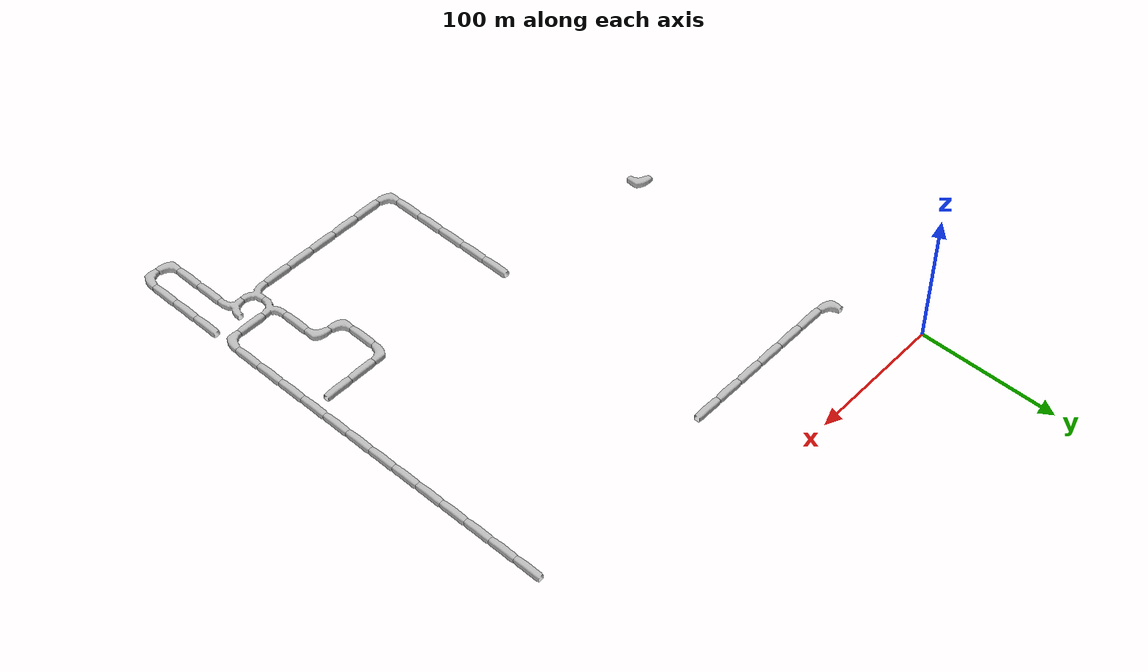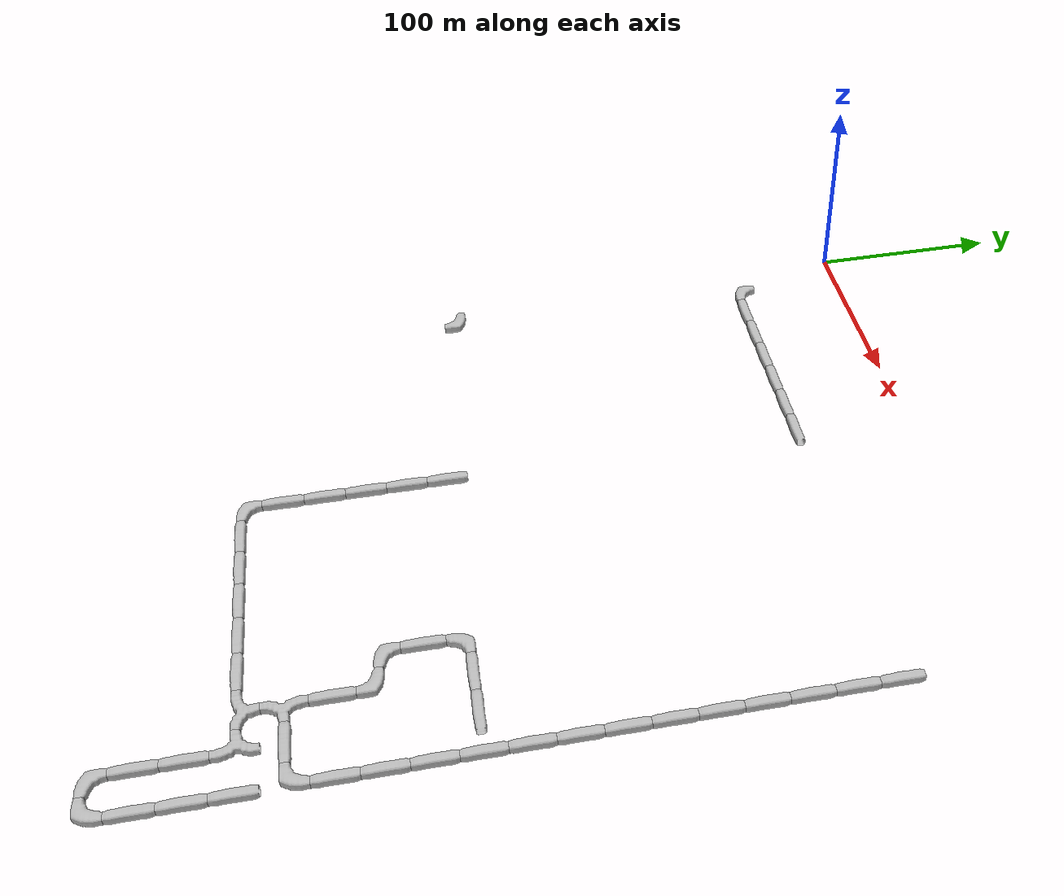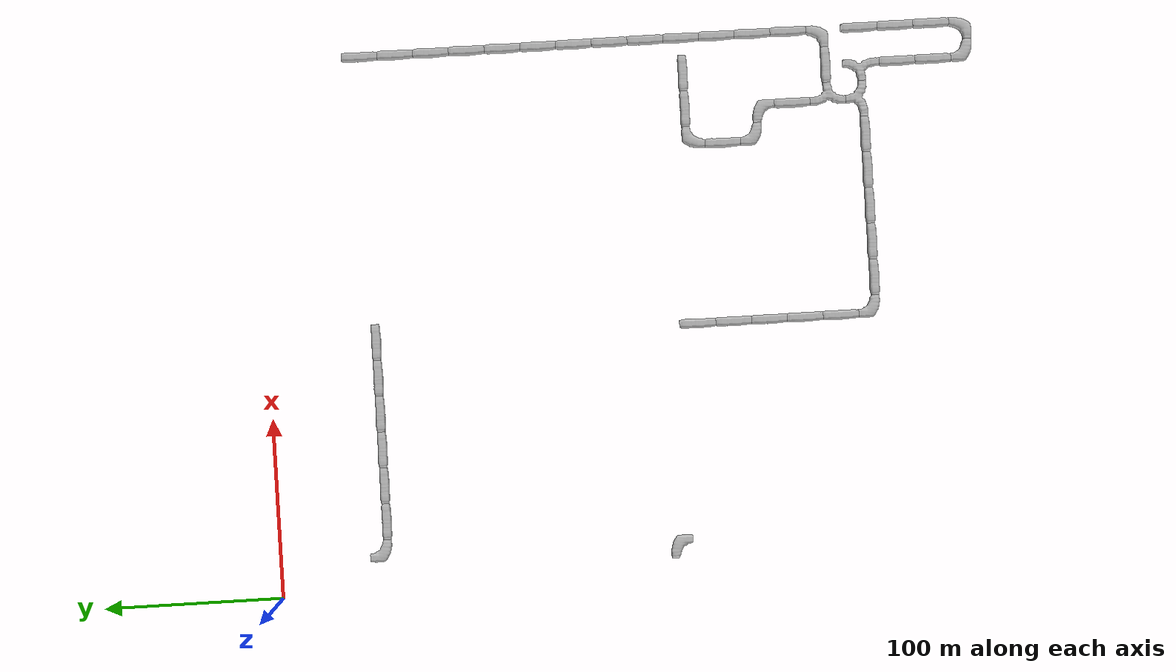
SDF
<sdf version="1.6">
 <world name="cave_4000">
  <include>
   <static>true</static>
   <name>cave_15_-3</name>
   <pose>300 -60 0 0 0 0.0</pose>
   <uri>model://cave_straight_20m</uri>
  </include>
  <include>
   <static>true</static>
   <name>cave_15_-4</name>
   <pose>300 -80 0 0 0 0.0</pose>
   <uri>model://cave_straight_20m</uri>
  </include>
  <include>
   <static>true</static>
   <name>cave_15_-5</name>
   <pose>300 -100 0 0 0 0.0</pose>
   <uri>model://cave_straight_20m</uri>
  </include>
  <include>
   <static>true</static>
   <name>cave_15_-6</name>
   <pose>300 -120 0 0 0 0.0</pose>
   <uri>model://cave_straight_20m</uri>
  </include>
  <include>
   <static>true</static>
   <name>cave_15_-7</name>
   <pose>300 -140 0 0 0 0.0</pose>
   <uri>model://cave_straight_20m</uri>
  </include>
  <include>
   <static>true</static>
   <name>cave_15_-8</name>
   <pose>300 -160 0 0 0 0.0</pose>
   <uri>model://cave_straight_20m</uri>
  </include>
  <include>
   <static>true</static>
   <name>cave_15_-9</name>
   <pose>300 -180 0 0 0 0.0</pose>
   <uri>model://cave_straight_20m</uri>
  </include>
  <include>
   <static>true</static>
   <name>cave_15_-10</name>
   <pose>300 -200 0 0 0 0.0</pose>
   <uri>model://cave_straight_20m</uri>
  </include>
  <include>
   <static>true</static>
   <name>cave_15_-11</name>
   <pose>300 -220 0 0 0 0.0</pose>
   <uri>model://cave_straight_20m</uri>
  </include>
  <include>
   <static>true</static>
   <name>cave_15_-12</name>
   <pose>300 -240 0 0 0 0.0</pose>
   <uri>model://cave_straight_20m</uri>
  </include>
  <include>
   <static>true</static>
   <name>cave_15_-13</name>
   <pose>300 -260 0 0 0 0.0</pose>
   <uri>model://cave_straight_20m</uri>
  </include>
  <include>
   <static>true</static>
   <name>cave_15_-14</name>
   <pose>300 -280 0 0 0 0.0</pose>
   <uri>model://cave_straight_20m</uri>
  </include>
  <include>
   <static>true</static>
   <name>cave_15_-15</name>
   <pose>300 -300 0 0 0 0.0</pose>
   <uri>model://cave_straight_20m</uri>
  </include>
  <include>
   <static>true</static>
   <name>cave_15_-16</name>
   <pose>300 -320 0 0 0 1.5707963267948966</pose>
   <uri>model://cave_L_20m</uri>
  </include>
  <include>
   <static>true</static>
   <name>cave_14_-16</name>
   <pose>280 -320 0 0 0 1.5707963267948966</pose>
   <uri>model://cave_straight_20m</uri>
  </include>
  <include>
   <static>true</static>
   <name>cave_13_-16</name>
   <pose>260 -320 0 0 0 -1.5707963267948966</pose>
   <uri>model://cave_3way_20m</uri>
  </include>
  <include>
   <static>true</static>
   <name>cave_13_-17</name>
   <pose>260 -340 0 0 0 0.0</pose>
   <uri>model://cave_3way_20m</uri>
  </include>
  <include>
   <static>true</static>
   <name>cave_14_-17</name>
   <pose>280 -340 0 0 0 1.5707963267948966</pose>
   <uri>model://cave_3way_20m</uri>
  </include>
  <include>
   <static>true</static>
   <name>cave_14_-18</name>
   <pose>280 -360 0 0 0 0.0</pose>
   <uri>model://cave_straight_20m</uri>
  </include>
  <include>
   <static>true</static>
   <name>cave_14_-19</name>
   <pose>280 -380 0 0 0 0.0</pose>
   <uri>model://cave_straight_20m</uri>
  </include>
  <include>
   <static>true</static>
   <name>cave_14_-20</name>
   <pose>280 -400 0 0 0 0.0</pose>
   <uri>model://cave_L_20m</uri>
  </include>
  <include>
   <static>true</static>
   <name>cave_15_-20</name>
   <pose>300 -400 0 0 0 1.5707963267948966</pose>
   <uri>model://cave_L_20m</uri>
  </include>
  <include>
   <static>true</static>
   <name>cave_15_-19</name>
   <pose>300 -380 0 0 0 0.0</pose>
   <uri>model://cave_straight_20m</uri>
  </include>
  <include>
   <static>true</static>
   <name>cave_15_-18</name>
   <pose>300 -360 0 0 0 0.0</pose>
   <uri>model://cave_straight_20m</uri>
  </include>
  <include>
   <static>true</static>
   <name>cave_15_-17</name>
   <pose>300 -340 0 0 0 0.0</pose>
   <uri>model://cave_straight_20m</uri>
  </include>
  <include>
   <static>true</static>
   <name>cave_12_-17</name>
   <pose>240 -340 0 0 0 1.5707963267948966</pose>
   <uri>model://cave_straight_20m</uri>
  </include>
  <include>
   <static>true</static>
   <name>cave_11_-17</name>
   <pose>220 -340 0 0 0 1.5707963267948966</pose>
   <uri>model://cave_straight_20m</uri>
  </include>
  <include>
   <static>true</static>
   <name>cave_10_-17</name>
   <pose>200 -340 0 0 0 1.5707963267948966</pose>
   <uri>model://cave_straight_20m</uri>
  </include>
  <include>
   <static>true</static>
   <name>cave_9_-17</name>
   <pose>180 -340 0 0 0 1.5707963267948966</pose>
   <uri>model://cave_straight_20m</uri>
  </include>
  <include>
   <static>true</static>
   <name>cave_8_-17</name>
   <pose>160 -340 0 0 0 1.5707963267948966</pose>
   <uri>model://cave_straight_20m</uri>
  </include>
  <include>
   <static>true</static>
   <name>cave_7_-17</name>
   <pose>140 -340 0 0 0 0.0</pose>
   <uri>model://cave_L_20m</uri>
  </include>
  <include>
   <static>true</static>
   <name>cave_7_-16</name>
   <pose>140 -320 0 0 0 0.0</pose>
   <uri>model://cave_straight_20m</uri>
  </include>
  <include>
   <static>true</static>
   <name>cave_7_-15</name>
   <pose>140 -300 0 0 0 0.0</pose>
   <uri>model://cave_straight_20m</uri>
  </include>
  <include>
   <static>true</static>
   <name>cave_7_-14</name>
   <pose>140 -280 0 0 0 0.0</pose>
   <uri>model://cave_straight_20m</uri>
  </include>
  <include>
   <static>true</static>
   <name>cave_7_-13</name>
   <pose>140 -260 0 0 0 0.0</pose>
   <uri>model://cave_straight_20m</uri>
  </include>
  <include>
   <static>true</static>
   <name>cave_7_-12</name>
   <pose>140 -240 0 0 0 0.0</pose>
   <uri>model://cave_straight_20m</uri>
  </include>
  <include>
   <static>true</static>
   <name>cave_13_-15</name>
   <pose>260 -300 0 0 0 0.0</pose>
   <uri>model://cave_straight_20m</uri>
  </include>
  <include>
   <static>true</static>
   <name>cave_13_-14</name>
   <pose>260 -280 0 0 0 3.141592653589793</pose>
   <uri>model://cave_L_20m</uri>
  </include>
  <include>
   <static>true</static>
   <name>cave_12_-14</name>
   <pose>240 -280 0 0 0 0.0</pose>
   <uri>model://cave_L_20m</uri>
  </include>
  <include>
   <static>true</static>
   <name>cave_12_-13</name>
   <pose>240 -260 0 0 0 0.0</pose>
   <uri>model://cave_straight_20m</uri>
  </include>
  <include>
   <static>true</static>
   <name>cave_12_-12</name>
   <pose>240 -240 0 0 0 -1.5707963267948966</pose>
   <uri>model://cave_L_20m</uri>
  </include>
  <include>
   <static>true</static>
   <name>cave_13_-12</name>
   <pose>260 -240 0 0 0 1.5707963267948966</pose>
   <uri>model://cave_straight_20m</uri>
  </include>
  <include>
   <static>true</static>
   <name>cave_14_-12</name>
   <pose>280 -240 0 0 0 1.5707963267948966</pose>
   <uri>model://cave_straight_20m</uri>
  </include>
  <include>
   <static>true</static>
   <name>cave_1_-3</name>
   <pose>20 -60 0 0 0 0.0</pose>
   <uri>model://cave_L_20m</uri>
  </include>
  <include>
   <static>true</static>
   <name>cave_2_-3</name>
   <pose>40 -60 0 0 0 1.5707963267948966</pose>
   <uri>model://cave_straight_20m</uri>
  </include>
  <include>
   <static>true</static>
   <name>cave_3_-3</name>
   <pose>60 -60 0 0 0 1.5707963267948966</pose>
   <uri>model://cave_straight_20m</uri>
  </include>
  <include>
   <static>true</static>
   <name>cave_4_-3</name>
   <pose>80 -60 0 0 0 1.5707963267948966</pose>
   <uri>model://cave_straight_20m</uri>
  </include>
  <include>
   <static>true</static>
   <name>cave_5_-3</name>
   <pose>100 -60 0 0 0 1.5707963267948966</pose>
   <uri>model://cave_straight_20m</uri>
  </include>
  <include>
   <static>true</static>
   <name>cave_6_-3</name>
   <pose>120 -60 0 0 0 1.5707963267948966</pose>
   <uri>model://cave_straight_20m</uri>
  </include>
  <include>
   <static>true</static>
   <name>cave_7_-3</name>
   <pose>140 -60 0 0 0 1.5707963267948966</pose>
   <uri>model://cave_straight_20m</uri>
  </include>
  <include>
   <static>true</static>
   <name>cave_1_-11</name>
   <pose>20 -220 0 0 0 3.141592653589793</pose>
   <uri>model://cave_L_20m</uri>
  </include>
 </world>
</sdf>
